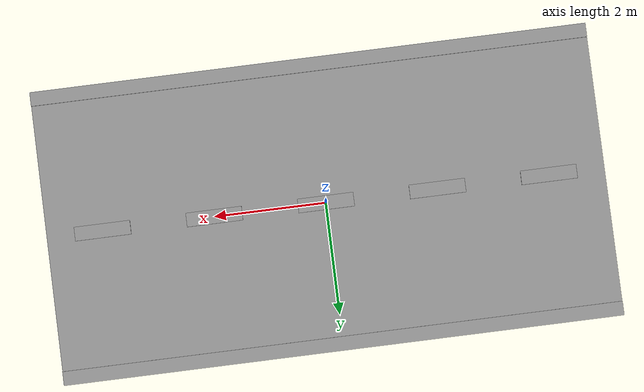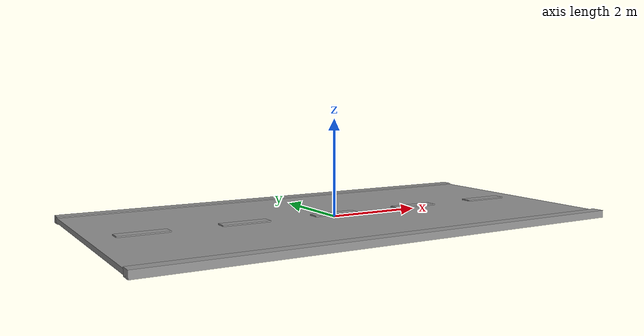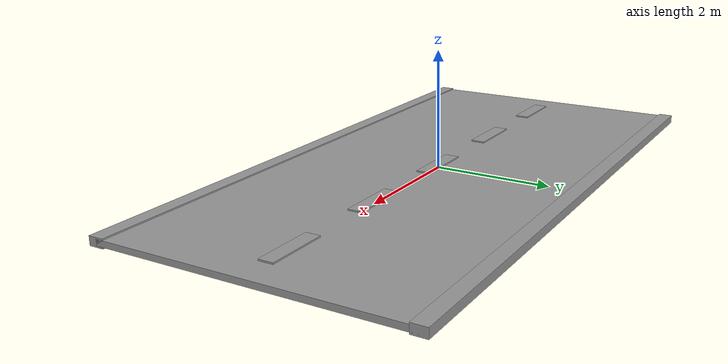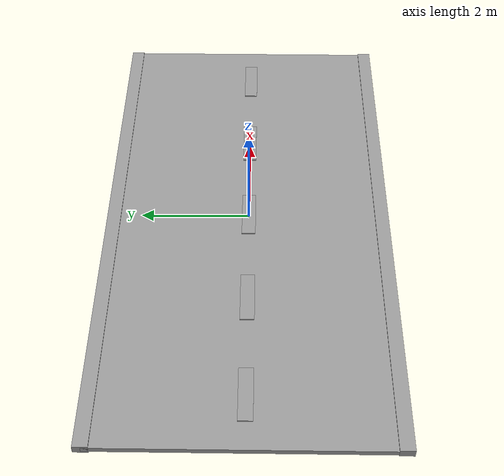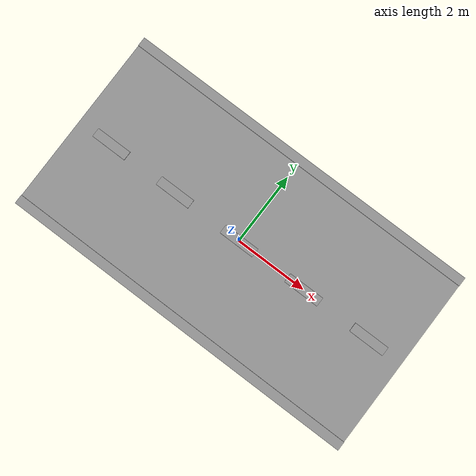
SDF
<?xml version='1.0'?>
<sdf version='1.7'>
  <model name='10x55_road_dikey'>
    <link name='link_0'>
      <inertial>
        <mass>8812.5</mass>
        <inertia>
          <ixx>73454</ixx>
          <ixy>0</ixy>
          <ixz>0</ixz>
          <iyy>18375.9</iyy>
          <iyz>0</iyz>
          <izz>91796.9</izz>
        </inertia>
        <pose>0 0 0 0 -0 0</pose>
      </inertial>
      <pose>0.000499 0.013908 0 0 -0 0</pose>
      <gravity>1</gravity>
      <self_collide>0</self_collide>
      <kinematic>0</kinematic>
      <enable_wind>0</enable_wind>
      <visual name='visual'>
        <pose>0 0 0 0 -0 0</pose>
        <geometry>
          <box>
            <size>10 5 0.1</size>
          </box>
        </geometry>
        <material>
          <lighting>1</lighting>
          <script>
            <uri>file://media/materials/scripts/gazebo.material</uri>
            <name>Gazebo/Grey</name>
          </script>
          <shader type='pixel'>
            <normal_map>__default__</normal_map>
          </shader>
          <ambient>0.008 0.008 0.008 1</ambient>
          <diffuse>0.18 0.204 0.212 1</diffuse>
          <specular>0 0 0 1</specular>
          <emissive>0 0 0 1</emissive>
        </material>
        <transparency>0</transparency>
        <cast_shadows>1</cast_shadows>
      </visual>
      <visual name='ModelPreview_16::link_0::visual_2'>
        <pose>0 -2.5 0 0 -0 0</pose>
        <geometry>
          <box>
            <size>10 0.25 0.15</size>
          </box>
        </geometry>
        <material>
          <lighting>1</lighting>
          <script>
            <uri>file://media/materials/scripts/gazebo.material</uri>
            <name>Gazebo/Grey</name>
          </script>
          <shader type='pixel'>
            <normal_map>__default__</normal_map>
          </shader>
          <ambient>1 1 1 1</ambient>
          <diffuse>1 1 1 1</diffuse>
          <specular>1 1 1 1</specular>
          <emissive>1 1 1 1</emissive>
        </material>
        <transparency>0</transparency>
        <cast_shadows>1</cast_shadows>
      </visual>
      <visual name='ModelPreview_16::link_0::visual_1'>
        <pose>0 2.5 0 0 -0 0</pose>
        <geometry>
          <box>
            <size>10 0.25 0.15</size>
          </box>
        </geometry>
        <material>
          <lighting>1</lighting>
          <script>
            <uri>file://media/materials/scripts/gazebo.material</uri>
            <name>Gazebo/Grey</name>
          </script>
          <shader type='pixel'>
            <normal_map>__default__</normal_map>
          </shader>
          <ambient>1 1 1 1</ambient>
          <diffuse>1 1 1 1</diffuse>
          <specular>1 1 1 1</specular>
          <emissive>1 1 1 1</emissive>
        </material>
        <transparency>0</transparency>
        <cast_shadows>1</cast_shadows>
      </visual>
      <collision name='collision'>
        <laser_retro>0</laser_retro>
        <max_contacts>10</max_contacts>
        <pose>0 0 0 0 -0 0</pose>
        <geometry>
          <box>
            <size>10 5 0.15</size>
          </box>
        </geometry>
        <surface>
          <friction>
            <ode>
              <mu>1</mu>
              <mu2>1</mu2>
              <fdir1>0 0 0</fdir1>
              <slip1>0</slip1>
              <slip2>0</slip2>
            </ode>
            <torsional>
              <coefficient>1</coefficient>
              <patch_radius>0</patch_radius>
              <surface_radius>0</surface_radius>
              <use_patch_radius>1</use_patch_radius>
              <ode>
                <slip>0</slip>
              </ode>
            </torsional>
          </friction>
          <bounce>
            <restitution_coefficient>0</restitution_coefficient>
            <threshold>1e+06</threshold>
          </bounce>
          <contact>
            <collide_without_contact>0</collide_without_contact>
            <collide_without_contact_bitmask>1</collide_without_contact_bitmask>
            <collide_bitmask>1</collide_bitmask>
            <ode>
              <soft_cfm>0</soft_cfm>
              <soft_erp>0.2</soft_erp>
              <kp>1e+13</kp>
              <kd>1</kd>
              <max_vel>0.01</max_vel>
              <min_depth>0</min_depth>
            </ode>
            <bullet>
              <split_impulse>1</split_impulse>
              <split_impulse_penetration_threshold>-0.01</split_impulse_penetration_threshold>
              <soft_cfm>0</soft_cfm>
              <soft_erp>0.2</soft_erp>
              <kp>1e+13</kp>
              <kd>1</kd>
            </bullet>
          </contact>
        </surface>
      </collision>
    </link>
    <link name='link_1_clone'>
      <inertial>
        <mass>44.0625</mass>
        <inertia>
          <ixx>3.75449</ixx>
          <ixy>0</ixy>
          <ixz>0</ixz>
          <iyy>0.312109</iyy>
          <iyz>0</iyz>
          <izz>3.90137</izz>
        </inertia>
        <pose>0 0 0 0 -0 0</pose>
      </inertial>
      <pose>1.9999 -0.002781 0 0 -0 0</pose>
      <gravity>1</gravity>
      <self_collide>0</self_collide>
      <kinematic>0</kinematic>
      <enable_wind>0</enable_wind>
      <visual name='visual'>
        <pose>0 0 0 0 -0 0</pose>
        <geometry>
          <box>
            <size>1 0.25 0.15</size>
          </box>
        </geometry>
        <material>
          <lighting>1</lighting>
          <script>
            <uri>file://media/materials/scripts/gazebo.material</uri>
            <name>Gazebo/Grey</name>
          </script>
          <shader type='normal_map_object_space'>
            <normal_map>__default__</normal_map>
          </shader>
          <ambient>1 1 1 1</ambient>
          <diffuse>1 1 1 1</diffuse>
          <specular>1 1 1 1</specular>
          <emissive>1 1 1 1</emissive>
        </material>
        <transparency>0</transparency>
        <cast_shadows>1</cast_shadows>
      </visual>
      <collision name='collision_1'>
        <laser_retro>0</laser_retro>
        <max_contacts>10</max_contacts>
        <pose>0 0 0 0 -0 0</pose>
        <geometry>
          <box>
            <size>1 0.25 0.2</size>
          </box>
        </geometry>
        <surface>
          <friction>
            <ode>
              <mu>1</mu>
              <mu2>1</mu2>
              <fdir1>0 0 0</fdir1>
              <slip1>0</slip1>
              <slip2>0</slip2>
            </ode>
            <torsional>
              <coefficient>1</coefficient>
              <patch_radius>0</patch_radius>
              <surface_radius>0</surface_radius>
              <use_patch_radius>1</use_patch_radius>
              <ode>
                <slip>0</slip>
              </ode>
            </torsional>
          </friction>
          <bounce>
            <restitution_coefficient>0</restitution_coefficient>
            <threshold>1e+06</threshold>
          </bounce>
          <contact>
            <collide_without_contact>0</collide_without_contact>
            <collide_without_contact_bitmask>1</collide_without_contact_bitmask>
            <collide_bitmask>1</collide_bitmask>
            <ode>
              <soft_cfm>0</soft_cfm>
              <soft_erp>0.2</soft_erp>
              <kp>1e+13</kp>
              <kd>1</kd>
              <max_vel>0.01</max_vel>
              <min_depth>0</min_depth>
            </ode>
            <bullet>
              <split_impulse>1</split_impulse>
              <split_impulse_penetration_threshold>-0.01</split_impulse_penetration_threshold>
              <soft_cfm>0</soft_cfm>
              <soft_erp>0.2</soft_erp>
              <kp>1e+13</kp>
              <kd>1</kd>
            </bullet>
          </contact>
        </surface>
      </collision>
    </link>
    <link name='link_1_clone_0'>
      <inertial>
        <mass>44.0625</mass>
        <inertia>
          <ixx>3.75449</ixx>
          <ixy>0</ixy>
          <ixz>0</ixz>
          <iyy>0.312109</iyy>
          <iyz>0</iyz>
          <izz>3.90137</izz>
        </inertia>
        <pose>0 0 0 0 -0 0</pose>
      </inertial>
      <pose>-0.0001 -0.002781 0 0 -0 0</pose>
      <gravity>1</gravity>
      <self_collide>0</self_collide>
      <kinematic>0</kinematic>
      <enable_wind>0</enable_wind>
      <visual name='visual'>
        <pose>0 0 0 0 -0 0</pose>
        <geometry>
          <box>
            <size>1 0.25 0.15</size>
          </box>
        </geometry>
        <material>
          <lighting>1</lighting>
          <script>
            <uri>file://media/materials/scripts/gazebo.material</uri>
            <name>Gazebo/Grey</name>
          </script>
          <shader type='normal_map_object_space'>
            <normal_map>__default__</normal_map>
          </shader>
          <ambient>1 1 1 1</ambient>
          <diffuse>1 1 1 1</diffuse>
          <specular>1 1 1 1</specular>
          <emissive>1 1 1 1</emissive>
        </material>
        <transparency>0</transparency>
        <cast_shadows>1</cast_shadows>
      </visual>
      <collision name='collision_1'>
        <laser_retro>0</laser_retro>
        <max_contacts>10</max_contacts>
        <pose>0 0 0 0 -0 0</pose>
        <geometry>
          <box>
            <size>1 0.25 0.2</size>
          </box>
        </geometry>
        <surface>
          <friction>
            <ode>
              <mu>1</mu>
              <mu2>1</mu2>
              <fdir1>0 0 0</fdir1>
              <slip1>0</slip1>
              <slip2>0</slip2>
            </ode>
            <torsional>
              <coefficient>1</coefficient>
              <patch_radius>0</patch_radius>
              <surface_radius>0</surface_radius>
              <use_patch_radius>1</use_patch_radius>
              <ode>
                <slip>0</slip>
              </ode>
            </torsional>
          </friction>
          <bounce>
            <restitution_coefficient>0</restitution_coefficient>
            <threshold>1e+06</threshold>
          </bounce>
          <contact>
            <collide_without_contact>0</collide_without_contact>
            <collide_without_contact_bitmask>1</collide_without_contact_bitmask>
            <collide_bitmask>1</collide_bitmask>
            <ode>
              <soft_cfm>0</soft_cfm>
              <soft_erp>0.2</soft_erp>
              <kp>1e+13</kp>
              <kd>1</kd>
              <max_vel>0.01</max_vel>
              <min_depth>0</min_depth>
            </ode>
            <bullet>
              <split_impulse>1</split_impulse>
              <split_impulse_penetration_threshold>-0.01</split_impulse_penetration_threshold>
              <soft_cfm>0</soft_cfm>
              <soft_erp>0.2</soft_erp>
              <kp>1e+13</kp>
              <kd>1</kd>
            </bullet>
          </contact>
        </surface>
      </collision>
    </link>
    <link name='link_1_clone_1'>
      <inertial>
        <mass>44.0625</mass>
        <inertia>
          <ixx>3.75449</ixx>
          <ixy>0</ixy>
          <ixz>0</ixz>
          <iyy>0.312109</iyy>
          <iyz>0</iyz>
          <izz>3.90137</izz>
        </inertia>
        <pose>0 0 0 0 -0 0</pose>
      </inertial>
      <pose>-2.0001 -0.002781 0 0 -0 0</pose>
      <gravity>1</gravity>
      <self_collide>0</self_collide>
      <kinematic>0</kinematic>
      <enable_wind>0</enable_wind>
      <visual name='visual'>
        <pose>0 0 0 0 -0 0</pose>
        <geometry>
          <box>
            <size>1 0.25 0.15</size>
          </box>
        </geometry>
        <material>
          <lighting>1</lighting>
          <script>
            <uri>file://media/materials/scripts/gazebo.material</uri>
            <name>Gazebo/Grey</name>
          </script>
          <shader type='normal_map_object_space'>
            <normal_map>__default__</normal_map>
          </shader>
          <ambient>1 1 1 1</ambient>
          <diffuse>1 1 1 1</diffuse>
          <specular>1 1 1 1</specular>
          <emissive>1 1 1 1</emissive>
        </material>
        <transparency>0</transparency>
        <cast_shadows>1</cast_shadows>
      </visual>
      <collision name='collision_1'>
        <laser_retro>0</laser_retro>
        <max_contacts>10</max_contacts>
        <pose>0 0 0 0 -0 0</pose>
        <geometry>
          <box>
            <size>1 0.25 0.2</size>
          </box>
        </geometry>
        <surface>
          <friction>
            <ode>
              <mu>1</mu>
              <mu2>1</mu2>
              <fdir1>0 0 0</fdir1>
              <slip1>0</slip1>
              <slip2>0</slip2>
            </ode>
            <torsional>
              <coefficient>1</coefficient>
              <patch_radius>0</patch_radius>
              <surface_radius>0</surface_radius>
              <use_patch_radius>1</use_patch_radius>
              <ode>
                <slip>0</slip>
              </ode>
            </torsional>
          </friction>
          <bounce>
            <restitution_coefficient>0</restitution_coefficient>
            <threshold>1e+06</threshold>
          </bounce>
          <contact>
            <collide_without_contact>0</collide_without_contact>
            <collide_without_contact_bitmask>1</collide_without_contact_bitmask>
            <collide_bitmask>1</collide_bitmask>
            <ode>
              <soft_cfm>0</soft_cfm>
              <soft_erp>0.2</soft_erp>
              <kp>1e+13</kp>
              <kd>1</kd>
              <max_vel>0.01</max_vel>
              <min_depth>0</min_depth>
            </ode>
            <bullet>
              <split_impulse>1</split_impulse>
              <split_impulse_penetration_threshold>-0.01</split_impulse_penetration_threshold>
              <soft_cfm>0</soft_cfm>
              <soft_erp>0.2</soft_erp>
              <kp>1e+13</kp>
              <kd>1</kd>
            </bullet>
          </contact>
        </surface>
      </collision>
    </link>
    <link name='link_1_clone_2'>
      <inertial>
        <mass>44.0625</mass>
        <inertia>
          <ixx>3.75449</ixx>
          <ixy>0</ixy>
          <ixz>0</ixz>
          <iyy>0.312109</iyy>
          <iyz>0</iyz>
          <izz>3.90137</izz>
        </inertia>
        <pose>0 0 0 0 -0 0</pose>
      </inertial>
      <pose>3.9999 -0.002781 0 0 -0 0</pose>
      <gravity>1</gravity>
      <self_collide>0</self_collide>
      <kinematic>0</kinematic>
      <enable_wind>0</enable_wind>
      <visual name='visual'>
        <pose>0 0 0 0 -0 0</pose>
        <geometry>
          <box>
            <size>1 0.25 0.15</size>
          </box>
        </geometry>
        <material>
          <lighting>1</lighting>
          <script>
            <uri>file://media/materials/scripts/gazebo.material</uri>
            <name>Gazebo/Grey</name>
          </script>
          <shader type='normal_map_object_space'>
            <normal_map>__default__</normal_map>
          </shader>
          <ambient>1 1 1 1</ambient>
          <diffuse>1 1 1 1</diffuse>
          <specular>1 1 1 1</specular>
          <emissive>1 1 1 1</emissive>
        </material>
        <transparency>0</transparency>
        <cast_shadows>1</cast_shadows>
      </visual>
      <collision name='collision_1'>
        <laser_retro>0</laser_retro>
        <max_contacts>10</max_contacts>
        <pose>0 0 0 0 -0 0</pose>
        <geometry>
          <box>
            <size>1 0.25 0.2</size>
          </box>
        </geometry>
        <surface>
          <friction>
            <ode>
              <mu>1</mu>
              <mu2>1</mu2>
              <fdir1>0 0 0</fdir1>
              <slip1>0</slip1>
              <slip2>0</slip2>
            </ode>
            <torsional>
              <coefficient>1</coefficient>
              <patch_radius>0</patch_radius>
              <surface_radius>0</surface_radius>
              <use_patch_radius>1</use_patch_radius>
              <ode>
                <slip>0</slip>
              </ode>
            </torsional>
          </friction>
          <bounce>
            <restitution_coefficient>0</restitution_coefficient>
            <threshold>1e+06</threshold>
          </bounce>
          <contact>
            <collide_without_contact>0</collide_without_contact>
            <collide_without_contact_bitmask>1</collide_without_contact_bitmask>
            <collide_bitmask>1</collide_bitmask>
            <ode>
              <soft_cfm>0</soft_cfm>
              <soft_erp>0.2</soft_erp>
              <kp>1e+13</kp>
              <kd>1</kd>
              <max_vel>0.01</max_vel>
              <min_depth>0</min_depth>
            </ode>
            <bullet>
              <split_impulse>1</split_impulse>
              <split_impulse_penetration_threshold>-0.01</split_impulse_penetration_threshold>
              <soft_cfm>0</soft_cfm>
              <soft_erp>0.2</soft_erp>
              <kp>1e+13</kp>
              <kd>1</kd>
            </bullet>
          </contact>
        </surface>
      </collision>
    </link>
    <link name='link_1_clone_3'>
      <inertial>
        <mass>44.0625</mass>
        <inertia>
          <ixx>3.75449</ixx>
          <ixy>0</ixy>
          <ixz>0</ixz>
          <iyy>0.312109</iyy>
          <iyz>0</iyz>
          <izz>3.90137</izz>
        </inertia>
        <pose>0 0 0 0 -0 0</pose>
      </inertial>
      <pose>-4.0001 -0.002781 0 0 -0 0</pose>
      <gravity>1</gravity>
      <self_collide>0</self_collide>
      <kinematic>0</kinematic>
      <enable_wind>0</enable_wind>
      <visual name='visual'>
        <pose>0 0 0 0 -0 0</pose>
        <geometry>
          <box>
            <size>1 0.25 0.15</size>
          </box>
        </geometry>
        <material>
          <lighting>1</lighting>
          <script>
            <uri>file://media/materials/scripts/gazebo.material</uri>
            <name>Gazebo/Grey</name>
          </script>
          <shader type='normal_map_object_space'>
            <normal_map>__default__</normal_map>
          </shader>
          <ambient>1 1 1 1</ambient>
          <diffuse>1 1 1 1</diffuse>
          <specular>1 1 1 1</specular>
          <emissive>1 1 1 1</emissive>
        </material>
        <transparency>0</transparency>
        <cast_shadows>1</cast_shadows>
      </visual>
      <collision name='collision_1'>
        <laser_retro>0</laser_retro>
        <max_contacts>10</max_contacts>
        <pose>0 0 0 0 -0 0</pose>
        <geometry>
          <box>
            <size>1 0.25 0.2</size>
          </box>
        </geometry>
        <surface>
          <friction>
            <ode>
              <mu>1</mu>
              <mu2>1</mu2>
              <fdir1>0 0 0</fdir1>
              <slip1>0</slip1>
              <slip2>0</slip2>
            </ode>
            <torsional>
              <coefficient>1</coefficient>
              <patch_radius>0</patch_radius>
              <surface_radius>0</surface_radius>
              <use_patch_radius>1</use_patch_radius>
              <ode>
                <slip>0</slip>
              </ode>
            </torsional>
          </friction>
          <bounce>
            <restitution_coefficient>0</restitution_coefficient>
            <threshold>1e+06</threshold>
          </bounce>
          <contact>
            <collide_without_contact>0</collide_without_contact>
            <collide_without_contact_bitmask>1</collide_without_contact_bitmask>
            <collide_bitmask>1</collide_bitmask>
            <ode>
              <soft_cfm>0</soft_cfm>
              <soft_erp>0.2</soft_erp>
              <kp>1e+13</kp>
              <kd>1</kd>
              <max_vel>0.01</max_vel>
              <min_depth>0</min_depth>
            </ode>
            <bullet>
              <split_impulse>1</split_impulse>
              <split_impulse_penetration_threshold>-0.01</split_impulse_penetration_threshold>
              <soft_cfm>0</soft_cfm>
              <soft_erp>0.2</soft_erp>
              <kp>1e+13</kp>
              <kd>1</kd>
            </bullet>
          </contact>
        </surface>
      </collision>
    </link>
    <joint name='link_0_JOINT_9' type='fixed'>
      <parent>link_0</parent>
      <child>link_1_clone_0</child>
      <pose>0 0 0 0 -0 0</pose>
      <physics>
        <ode>
          <limit>
            <cfm>0</cfm>
            <erp>0.2</erp>
          </limit>
          <suspension>
            <cfm>0</cfm>
            <erp>0.2</erp>
          </suspension>
        </ode>
      </physics>
    </joint>
    <joint name='link_1_clone_0_JOINT_3' type='fixed'>
      <parent>link_1_clone_0</parent>
      <child>link_1_clone</child>
      <pose>0 0 0 0 -0 0</pose>
      <physics>
        <ode>
          <limit>
            <cfm>0</cfm>
            <erp>0.2</erp>
          </limit>
          <suspension>
            <cfm>0</cfm>
            <erp>0.2</erp>
          </suspension>
        </ode>
      </physics>
    </joint>
    <joint name='link_1_clone_0_JOINT_4' type='fixed'>
      <parent>link_1_clone_0</parent>
      <child>link_1_clone_1</child>
      <pose>0 0 0 0 -0 0</pose>
      <physics>
        <ode>
          <limit>
            <cfm>0</cfm>
            <erp>0.2</erp>
          </limit>
          <suspension>
            <cfm>0</cfm>
            <erp>0.2</erp>
          </suspension>
        </ode>
      </physics>
    </joint>
    <joint name='link_1_clone_0_JOINT_5' type='fixed'>
      <parent>link_1_clone_0</parent>
      <child>link_1_clone_2</child>
      <pose>0 0 0 0 -0 0</pose>
      <physics>
        <ode>
          <limit>
            <cfm>0</cfm>
            <erp>0.2</erp>
          </limit>
          <suspension>
            <cfm>0</cfm>
            <erp>0.2</erp>
          </suspension>
        </ode>
      </physics>
    </joint>
    <joint name='link_1_clone_0_JOINT_6' type='fixed'>
      <parent>link_1_clone_0</parent>
      <child>link_1_clone_3</child>
      <pose>0 0 0 0 -0 0</pose>
      <physics>
        <ode>
          <limit>
            <cfm>0</cfm>
            <erp>0.2</erp>
          </limit>
          <suspension>
            <cfm>0</cfm>
            <erp>0.2</erp>
          </suspension>
        </ode>
      </physics>
    </joint>
    <static>1</static>
    <allow_auto_disable>1</allow_auto_disable>
  </model>
</sdf>
